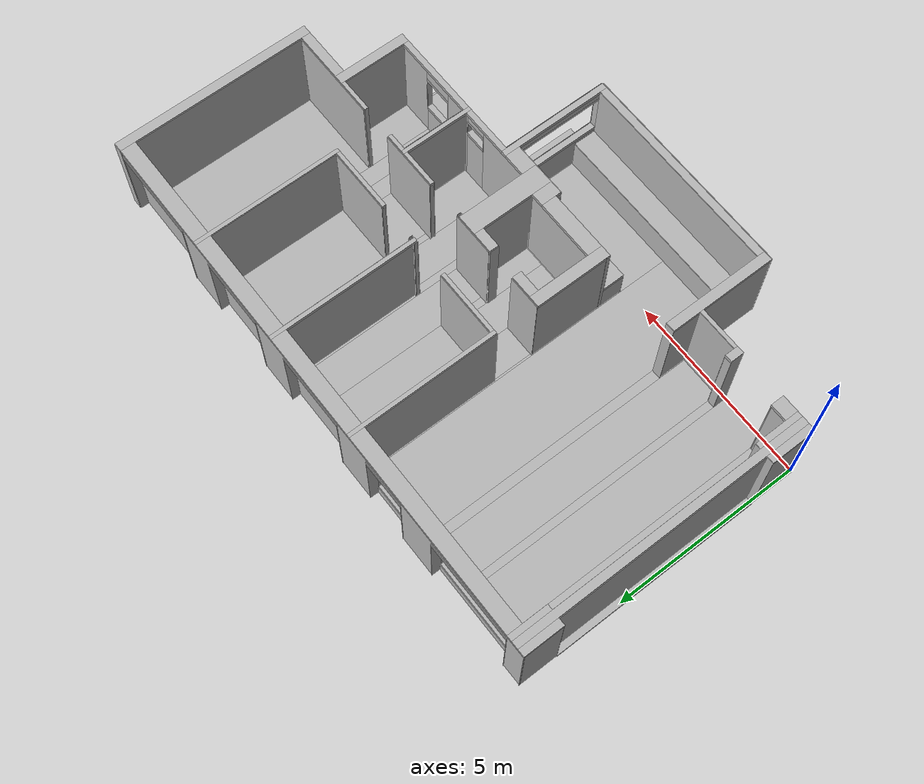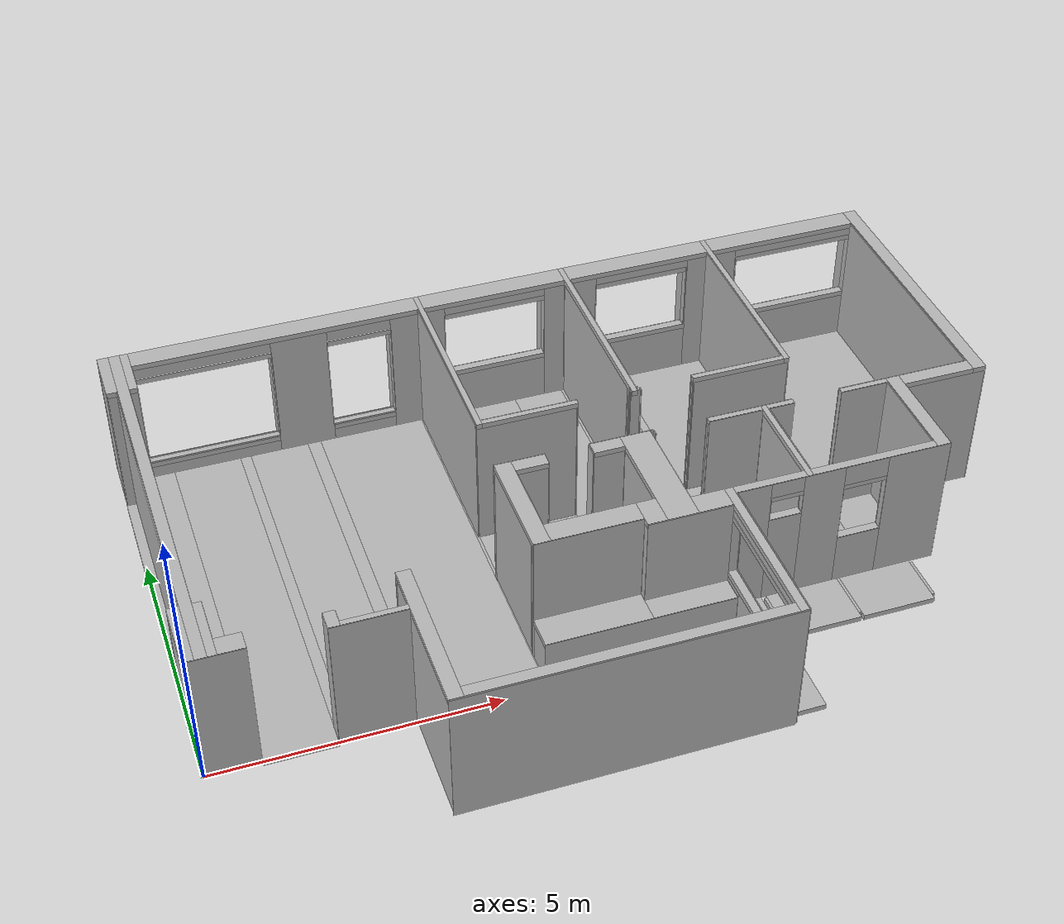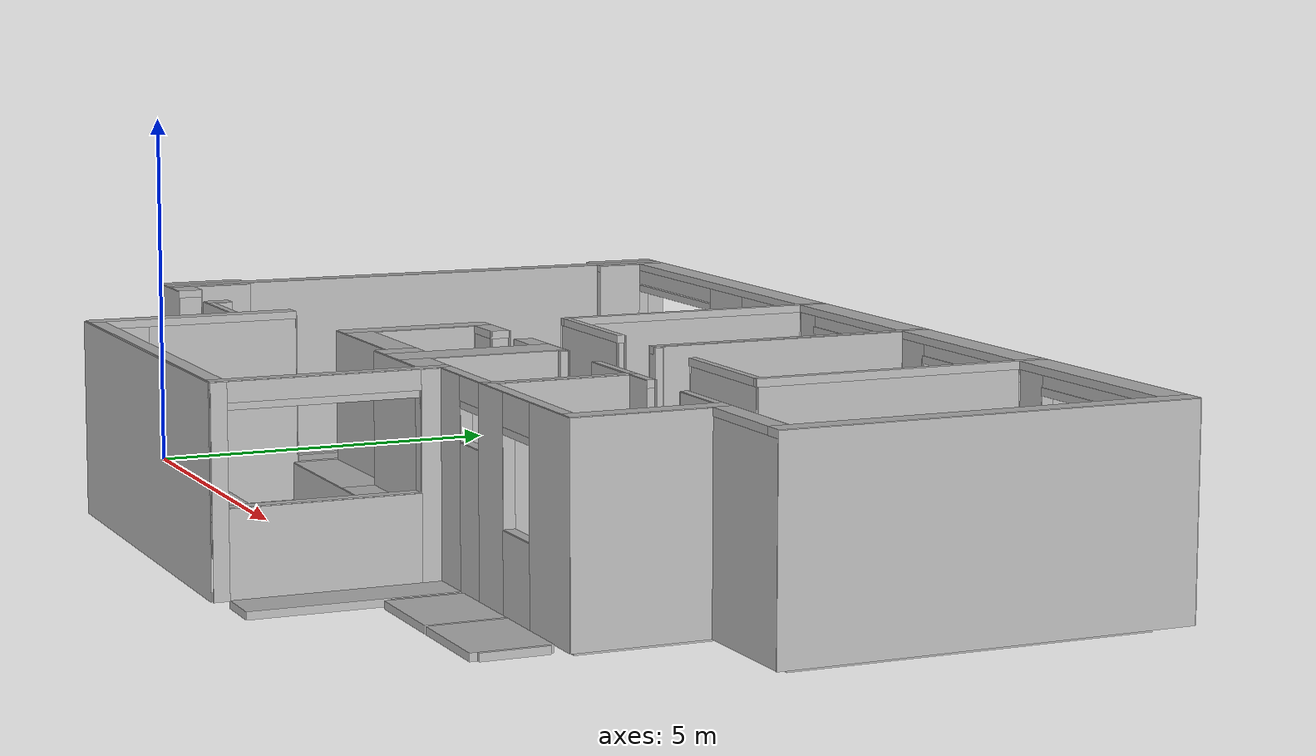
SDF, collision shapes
<?xml version='1.0' encoding='utf-8'?>
<sdf version="1.9">
  <model name="greenquartz_bto">
    <static>true</static>
    <pose>0 0 -0.01 0 0 0</pose>
    <link name="apartment">
      <visual name="fusion_visual">
        <geometry>
          <mesh>
            <uri>model://greenquartz_bto/meshes/GreenQuartz_BTO.obj</uri>
            <scale>0.01 0.01 0.01</scale>
          </mesh>
        </geometry>
      </visual>
      <collision name="planar_0000">
        <pose>-0.039840 0.600000 1.300000 0 0 0</pose>
        <geometry>
          <box>
            <size>0.010000 1.200000 2.600000</size>
          </box>
        </geometry>
      </collision>
      <collision name="planar_0001">
        <pose>-0.039840 7.325000 1.300000 0 0 0</pose>
        <geometry>
          <box>
            <size>0.010000 1.050000 2.600000</size>
          </box>
        </geometry>
      </collision>
      <collision name="planar_0002">
        <pose>0.130160 4.000000 1.300000 0 0 0</pose>
        <geometry>
          <box>
            <size>0.010000 5.600000 2.600000</size>
          </box>
        </geometry>
      </collision>
      <collision name="planar_0003">
        <pose>0.350160 4.000000 1.300000 0 0 0</pose>
        <geometry>
          <box>
            <size>0.010000 5.600000 2.600000</size>
          </box>
        </geometry>
      </collision>
      <collision name="planar_0004">
        <pose>0.500160 0.775000 1.300000 0 0 0</pose>
        <geometry>
          <box>
            <size>0.010000 0.850000 2.600000</size>
          </box>
        </geometry>
      </collision>
      <collision name="planar_0005">
        <pose>0.500160 7.125000 1.300000 0 0 0</pose>
        <geometry>
          <box>
            <size>0.010000 0.650000 2.600000</size>
          </box>
        </geometry>
      </collision>
      <collision name="planar_0006">
        <pose>0.500160 7.525000 1.325000 0 0 0</pose>
        <geometry>
          <box>
            <size>0.010000 0.150000 1.950000</size>
          </box>
        </geometry>
      </collision>
      <collision name="planar_0007">
        <pose>0.500160 7.725000 1.150000 0 0 0</pose>
        <geometry>
          <box>
            <size>0.010000 0.250000 2.300000</size>
          </box>
        </geometry>
      </collision>
      <collision name="planar_0008">
        <pose>0.925160 0.175000 1.300000 0 0 0</pose>
        <geometry>
          <box>
            <size>0.010000 0.350000 2.600000</size>
          </box>
        </geometry>
      </collision>
      <collision name="planar_0009">
        <pose>2.201910 0.175000 1.300000 0 0 0</pose>
        <geometry>
          <box>
            <size>0.010000 0.350000 2.600000</size>
          </box>
        </geometry>
      </collision>
      <collision name="planar_0010">
        <pose>2.401910 0.225000 1.300000 0 0 0</pose>
        <geometry>
          <box>
            <size>0.010000 0.250000 2.600000</size>
          </box>
        </geometry>
      </collision>
      <collision name="planar_0011">
        <pose>3.002350 7.525000 1.325000 0 0 0</pose>
        <geometry>
          <box>
            <size>0.010000 0.150000 1.950000</size>
          </box>
        </geometry>
      </collision>
      <collision name="planar_0012">
        <pose>3.002350 7.725000 1.150000 0 0 0</pose>
        <geometry>
          <box>
            <size>0.010000 0.250000 2.300000</size>
          </box>
        </geometry>
      </collision>
      <collision name="planar_0013">
        <pose>3.521910 -0.575000 1.300000 0 0 0</pose>
        <geometry>
          <box>
            <size>0.010000 2.850000 2.600000</size>
          </box>
        </geometry>
      </collision>
      <collision name="planar_0014">
        <pose>3.731910 -1.500000 1.750000 0 0 0</pose>
        <geometry>
          <box>
            <size>0.010000 0.600000 1.700000</size>
          </box>
        </geometry>
      </collision>
      <collision name="planar_0015">
        <pose>3.731910 -0.175000 1.300000 0 0 0</pose>
        <geometry>
          <box>
            <size>0.010000 2.050000 2.600000</size>
          </box>
        </geometry>
      </collision>
      <collision name="planar_0016">
        <pose>4.042350 7.525000 1.325000 0 0 0</pose>
        <geometry>
          <box>
            <size>0.010000 0.150000 1.950000</size>
          </box>
        </geometry>
      </collision>
      <collision name="planar_0017">
        <pose>4.042350 7.725000 1.150000 0 0 0</pose>
        <geometry>
          <box>
            <size>0.010000 0.250000 2.300000</size>
          </box>
        </geometry>
      </collision>
      <collision name="planar_0018">
        <pose>5.250910 7.525000 1.325000 0 0 0</pose>
        <geometry>
          <box>
            <size>0.010000 0.150000 1.950000</size>
          </box>
        </geometry>
      </collision>
      <collision name="planar_0019">
        <pose>5.250910 7.725000 1.150000 0 0 0</pose>
        <geometry>
          <box>
            <size>0.010000 0.250000 2.300000</size>
          </box>
        </geometry>
      </collision>
      <collision name="planar_0020">
        <pose>5.771910 0.450000 0.450000 0 0 0</pose>
        <geometry>
          <box>
            <size>0.010000 0.600000 0.900000</size>
          </box>
        </geometry>
      </collision>
      <collision name="planar_0021">
        <pose>5.771910 1.775000 1.300000 0 0 0</pose>
        <geometry>
          <box>
            <size>0.010000 2.050000 2.600000</size>
          </box>
        </geometry>
      </collision>
      <collision name="planar_0022">
        <pose>5.780000 5.675000 1.300000 0 0 0</pose>
        <geometry>
          <box>
            <size>0.010000 3.550000 2.600000</size>
          </box>
        </geometry>
      </collision>
      <collision name="planar_0023">
        <pose>5.880000 5.725000 1.300000 0 0 0</pose>
        <geometry>
          <box>
            <size>0.010000 3.450000 2.600000</size>
          </box>
        </geometry>
      </collision>
      <collision name="planar_0024">
        <pose>6.056910 1.850000 1.300000 0 0 0</pose>
        <geometry>
          <box>
            <size>0.010000 1.400000 2.600000</size>
          </box>
        </geometry>
      </collision>
      <collision name="planar_0025">
        <pose>6.290910 7.525000 1.675000 0 0 0</pose>
        <geometry>
          <box>
            <size>0.010000 0.150000 1.350000</size>
          </box>
        </geometry>
      </collision>
      <collision name="planar_0026">
        <pose>6.290910 7.725000 1.175000 0 0 0</pose>
        <geometry>
          <box>
            <size>0.010000 0.250000 2.350000</size>
          </box>
        </geometry>
      </collision>
      <collision name="planar_0027">
        <pose>6.636910 2.675000 1.300000 0 0 0</pose>
        <geometry>
          <box>
            <size>0.010000 0.250000 2.600000</size>
          </box>
        </geometry>
      </collision>
      <collision name="planar_0028">
        <pose>7.431340 2.675000 1.300000 0 0 0</pose>
        <geometry>
          <box>
            <size>0.010000 0.250000 2.600000</size>
          </box>
        </geometry>
      </collision>
      <collision name="planar_0029">
        <pose>7.630000 3.950000 1.300000 0 0 0</pose>
        <geometry>
          <box>
            <size>0.010000 0.100000 2.600000</size>
          </box>
        </geometry>
      </collision>
      <collision name="planar_0030">
        <pose>7.661910 0.675000 1.750000 0 0 0</pose>
        <geometry>
          <box>
            <size>0.010000 0.150000 1.700000</size>
          </box>
        </geometry>
      </collision>
      <collision name="planar_0031">
        <pose>8.008580 1.850000 1.300000 0 0 0</pose>
        <geometry>
          <box>
            <size>0.010000 1.400000 2.600000</size>
          </box>
        </geometry>
      </collision>
      <collision name="planar_0032">
        <pose>8.246850 7.525000 1.675000 0 0 0</pose>
        <geometry>
          <box>
            <size>0.010000 0.150000 1.350000</size>
          </box>
        </geometry>
      </collision>
      <collision name="planar_0033">
        <pose>8.246850 7.725000 1.175000 0 0 0</pose>
        <geometry>
          <box>
            <size>0.010000 0.250000 2.350000</size>
          </box>
        </geometry>
      </collision>
      <collision name="planar_0034">
        <pose>8.548580 1.825000 1.300000 0 0 0</pose>
        <geometry>
          <box>
            <size>0.010000 1.950000 2.600000</size>
          </box>
        </geometry>
      </collision>
      <collision name="planar_0035">
        <pose>8.620000 3.950000 1.300000 0 0 0</pose>
        <geometry>
          <box>
            <size>0.010000 0.100000 2.600000</size>
          </box>
        </geometry>
      </collision>
      <collision name="planar_0036">
        <pose>8.621900 2.750000 1.300000 0 0 0</pose>
        <geometry>
          <box>
            <size>0.010000 0.100000 2.600000</size>
          </box>
        </geometry>
      </collision>
      <collision name="planar_0037">
        <pose>8.660000 5.725000 1.300000 0 0 0</pose>
        <geometry>
          <box>
            <size>0.010000 3.450000 2.600000</size>
          </box>
        </geometry>
      </collision>
      <collision name="planar_0038">
        <pose>8.760000 5.725000 1.300000 0 0 0</pose>
        <geometry>
          <box>
            <size>0.010000 3.450000 2.600000</size>
          </box>
        </geometry>
      </collision>
      <collision name="planar_0039">
        <pose>8.820000 3.950000 1.300000 0 0 0</pose>
        <geometry>
          <box>
            <size>0.010000 0.100000 2.600000</size>
          </box>
        </geometry>
      </collision>
      <collision name="planar_0040">
        <pose>9.163560 -1.500000 1.000000 0 0 0</pose>
        <geometry>
          <box>
            <size>0.010000 0.600000 0.200000</size>
          </box>
        </geometry>
      </collision>
      <collision name="planar_0041">
        <pose>9.163560 -0.525000 0.550000 0 0 0</pose>
        <geometry>
          <box>
            <size>0.010000 1.350000 1.100000</size>
          </box>
        </geometry>
      </collision>
      <collision name="planar_0042">
        <pose>9.163560 -0.600000 2.475000 0 0 0</pose>
        <geometry>
          <box>
            <size>0.010000 2.400000 0.250000</size>
          </box>
        </geometry>
      </collision>
      <collision name="planar_0043">
        <pose>9.163560 0.375000 1.000000 0 0 0</pose>
        <geometry>
          <box>
            <size>0.010000 0.450000 0.200000</size>
          </box>
        </geometry>
      </collision>
      <collision name="planar_0044">
        <pose>9.286850 7.525000 1.675000 0 0 0</pose>
        <geometry>
          <box>
            <size>0.010000 0.150000 1.350000</size>
          </box>
        </geometry>
      </collision>
      <collision name="planar_0045">
        <pose>9.286850 7.725000 1.175000 0 0 0</pose>
        <geometry>
          <box>
            <size>0.010000 0.250000 2.350000</size>
          </box>
        </geometry>
      </collision>
      <collision name="planar_0046">
        <pose>9.321910 -1.900000 1.300000 0 0 0</pose>
        <geometry>
          <box>
            <size>0.010000 0.200000 2.600000</size>
          </box>
        </geometry>
      </collision>
      <collision name="planar_0047">
        <pose>9.321910 -0.600000 2.475000 0 0 0</pose>
        <geometry>
          <box>
            <size>0.010000 2.400000 0.250000</size>
          </box>
        </geometry>
      </collision>
      <collision name="planar_0048">
        <pose>9.321910 -0.600000 0.550000 0 0 0</pose>
        <geometry>
          <box>
            <size>0.010000 2.400000 1.100000</size>
          </box>
        </geometry>
      </collision>
      <collision name="planar_0049">
        <pose>9.321910 0.725000 1.300000 0 0 0</pose>
        <geometry>
          <box>
            <size>0.010000 0.250000 2.600000</size>
          </box>
        </geometry>
      </collision>
      <collision name="planar_0050">
        <pose>9.625000 2.750000 1.300000 0 0 0</pose>
        <geometry>
          <box>
            <size>0.010000 0.100000 2.600000</size>
          </box>
        </geometry>
      </collision>
      <collision name="planar_0051">
        <pose>9.815720 3.950000 1.300000 0 0 0</pose>
        <geometry>
          <box>
            <size>0.010000 0.100000 2.600000</size>
          </box>
        </geometry>
      </collision>
      <collision name="planar_0052">
        <pose>9.962660 0.925000 2.050000 0 0 0</pose>
        <geometry>
          <box>
            <size>0.010000 0.150000 0.500000</size>
          </box>
        </geometry>
      </collision>
      <collision name="planar_0053">
        <pose>10.567450 0.925000 2.050000 0 0 0</pose>
        <geometry>
          <box>
            <size>0.010000 0.150000 0.500000</size>
          </box>
        </geometry>
      </collision>
      <collision name="planar_0054">
        <pose>10.615310 1.850000 1.300000 0 0 0</pose>
        <geometry>
          <box>
            <size>0.010000 1.700000 2.600000</size>
          </box>
        </geometry>
      </collision>
      <collision name="planar_0055">
        <pose>10.720310 1.850000 1.300000 0 0 0</pose>
        <geometry>
          <box>
            <size>0.010000 1.700000 2.600000</size>
          </box>
        </geometry>
      </collision>
      <collision name="planar_0056">
        <pose>11.127630 7.525000 1.675000 0 0 0</pose>
        <geometry>
          <box>
            <size>0.010000 0.150000 1.350000</size>
          </box>
        </geometry>
      </collision>
      <collision name="planar_0057">
        <pose>11.127630 7.725000 1.175000 0 0 0</pose>
        <geometry>
          <box>
            <size>0.010000 0.250000 2.350000</size>
          </box>
        </geometry>
      </collision>
      <collision name="planar_0058">
        <pose>11.189250 2.750000 1.300000 0 0 0</pose>
        <geometry>
          <box>
            <size>0.010000 0.100000 2.600000</size>
          </box>
        </geometry>
      </collision>
      <collision name="planar_0059">
        <pose>11.301610 0.925000 1.600000 0 0 0</pose>
        <geometry>
          <box>
            <size>0.010000 0.150000 1.200000</size>
          </box>
        </geometry>
      </collision>
      <collision name="planar_0060">
        <pose>11.535720 5.725000 1.300000 0 0 0</pose>
        <geometry>
          <box>
            <size>0.010000 3.450000 2.600000</size>
          </box>
        </geometry>
      </collision>
      <collision name="planar_0061">
        <pose>11.635720 5.675000 1.300000 0 0 0</pose>
        <geometry>
          <box>
            <size>0.010000 3.550000 2.600000</size>
          </box>
        </geometry>
      </collision>
      <collision name="planar_0062">
        <pose>12.100000 2.750000 1.300000 0 0 0</pose>
        <geometry>
          <box>
            <size>0.010000 0.100000 2.600000</size>
          </box>
        </geometry>
      </collision>
      <collision name="planar_0063">
        <pose>12.111070 0.925000 1.600000 0 0 0</pose>
        <geometry>
          <box>
            <size>0.010000 0.150000 1.200000</size>
          </box>
        </geometry>
      </collision>
      <collision name="planar_0064">
        <pose>12.167630 7.525000 1.675000 0 0 0</pose>
        <geometry>
          <box>
            <size>0.010000 0.150000 1.350000</size>
          </box>
        </geometry>
      </collision>
      <collision name="planar_0065">
        <pose>12.167630 7.725000 1.175000 0 0 0</pose>
        <geometry>
          <box>
            <size>0.010000 0.250000 2.350000</size>
          </box>
        </geometry>
      </collision>
      <collision name="planar_0066">
        <pose>12.980890 1.850000 1.300000 0 0 0</pose>
        <geometry>
          <box>
            <size>0.010000 1.700000 2.600000</size>
          </box>
        </geometry>
      </collision>
      <collision name="planar_0067">
        <pose>13.250890 1.825000 1.300000 0 0 0</pose>
        <geometry>
          <box>
            <size>0.010000 1.950000 2.600000</size>
          </box>
        </geometry>
      </collision>
      <collision name="planar_0068">
        <pose>14.575750 5.125000 1.300000 0 0 0</pose>
        <geometry>
          <box>
            <size>0.010000 4.650000 2.600000</size>
          </box>
        </geometry>
      </collision>
      <collision name="planar_0069">
        <pose>14.575750 7.525000 1.675000 0 0 0</pose>
        <geometry>
          <box>
            <size>0.010000 0.150000 1.350000</size>
          </box>
        </geometry>
      </collision>
      <collision name="planar_0070">
        <pose>14.575750 7.725000 1.175000 0 0 0</pose>
        <geometry>
          <box>
            <size>0.010000 0.250000 2.350000</size>
          </box>
        </geometry>
      </collision>
      <collision name="planar_0071">
        <pose>14.845750 5.200000 1.300000 0 0 0</pose>
        <geometry>
          <box>
            <size>0.010000 5.300000 2.600000</size>
          </box>
        </geometry>
      </collision>
      <collision name="planar_0072">
        <pose>6.400000 -2.018000 1.300000 0 0 0</pose>
        <geometry>
          <box>
            <size>5.800000 0.010000 2.600000</size>
          </box>
        </geometry>
      </collision>
      <collision name="planar_0073">
        <pose>6.450000 -1.798000 1.750000 0 0 0</pose>
        <geometry>
          <box>
            <size>5.400000 0.010000 1.700000</size>
          </box>
        </geometry>
      </collision>
      <collision name="planar_0074">
        <pose>9.225000 -1.798000 1.725000 0 0 0</pose>
        <geometry>
          <box>
            <size>0.150000 0.010000 1.250000</size>
          </box>
        </geometry>
      </collision>
      <collision name="planar_0075">
        <pose>6.450000 -1.198000 0.450000 0 0 0</pose>
        <geometry>
          <box>
            <size>5.400000 0.010000 0.900000</size>
          </box>
        </geometry>
      </collision>
      <collision name="planar_0076">
        <pose>0.450000 0.000000 1.300000 0 0 0</pose>
        <geometry>
          <box>
            <size>1.000000 0.010000 2.600000</size>
          </box>
        </geometry>
      </collision>
      <collision name="planar_0077">
        <pose>2.850000 0.000000 1.300000 0 0 0</pose>
        <geometry>
          <box>
            <size>1.300000 0.010000 2.600000</size>
          </box>
        </geometry>
      </collision>
      <collision name="planar_0078">
        <pose>2.950000 0.100000 1.300000 0 0 0</pose>
        <geometry>
          <box>
            <size>1.100000 0.010000 2.600000</size>
          </box>
        </geometry>
      </collision>
      <collision name="planar_0079">
        <pose>7.450000 0.150000 0.450000 0 0 0</pose>
        <geometry>
          <box>
            <size>3.400000 0.010000 0.900000</size>
          </box>
        </geometry>
      </collision>
      <collision name="planar_0080">
        <pose>0.725000 0.340000 1.300000 0 0 0</pose>
        <geometry>
          <box>
            <size>0.450000 0.010000 2.600000</size>
          </box>
        </geometry>
      </collision>
      <collision name="planar_0081">
        <pose>2.300000 0.340000 1.300000 0 0 0</pose>
        <geometry>
          <box>
            <size>0.200000 0.010000 2.600000</size>
          </box>
        </geometry>
      </collision>
      <collision name="planar_0082">
        <pose>8.400000 0.592000 1.750000 0 0 0</pose>
        <geometry>
          <box>
            <size>1.500000 0.010000 1.700000</size>
          </box>
        </geometry>
      </collision>
      <collision name="planar_0083">
        <pose>9.225000 0.592000 1.725000 0 0 0</pose>
        <geometry>
          <box>
            <size>0.150000 0.010000 1.250000</size>
          </box>
        </geometry>
      </collision>
      <collision name="planar_0084">
        <pose>6.700000 0.750000 1.750000 0 0 0</pose>
        <geometry>
          <box>
            <size>1.900000 0.010000 1.700000</size>
          </box>
        </geometry>
      </collision>
      <collision name="planar_0085">
        <pose>3.625000 0.852000 1.300000 0 0 0</pose>
        <geometry>
          <box>
            <size>0.250000 0.010000 2.600000</size>
          </box>
        </geometry>
      </collision>
      <collision name="planar_0086">
        <pose>7.850000 0.852000 1.300000 0 0 0</pose>
        <geometry>
          <box>
            <size>4.200000 0.010000 2.600000</size>
          </box>
        </geometry>
      </collision>
      <collision name="planar_0087">
        <pose>10.250000 0.852000 2.450000 0 0 0</pose>
        <geometry>
          <box>
            <size>0.600000 0.010000 0.300000</size>
          </box>
        </geometry>
      </collision>
      <collision name="planar_0088">
        <pose>10.250000 0.852000 0.900000 0 0 0</pose>
        <geometry>
          <box>
            <size>0.600000 0.010000 1.800000</size>
          </box>
        </geometry>
      </collision>
      <collision name="planar_0089">
        <pose>10.925000 0.852000 1.300000 0 0 0</pose>
        <geometry>
          <box>
            <size>0.750000 0.010000 2.600000</size>
          </box>
        </geometry>
      </collision>
      <collision name="planar_0090">
        <pose>11.700000 0.852000 2.400000 0 0 0</pose>
        <geometry>
          <box>
            <size>0.800000 0.010000 0.400000</size>
          </box>
        </geometry>
      </collision>
      <collision name="planar_0091">
        <pose>11.700000 0.852000 0.500000 0 0 0</pose>
        <geometry>
          <box>
            <size>0.800000 0.010000 1.000000</size>
          </box>
        </geometry>
      </collision>
      <collision name="planar_0092">
        <pose>12.675000 0.852000 1.300000 0 0 0</pose>
        <geometry>
          <box>
            <size>1.150000 0.010000 2.600000</size>
          </box>
        </geometry>
      </collision>
      <collision name="planar_0093">
        <pose>9.250000 0.992000 1.300000 0 0 0</pose>
        <geometry>
          <box>
            <size>1.400000 0.010000 2.600000</size>
          </box>
        </geometry>
      </collision>
      <collision name="planar_0094">
        <pose>10.250000 0.992000 2.450000 0 0 0</pose>
        <geometry>
          <box>
            <size>0.600000 0.010000 0.300000</size>
          </box>
        </geometry>
      </collision>
      <collision name="planar_0095">
        <pose>10.250000 0.992000 0.900000 0 0 0</pose>
        <geometry>
          <box>
            <size>0.600000 0.010000 1.800000</size>
          </box>
        </geometry>
      </collision>
      <collision name="planar_0096">
        <pose>10.575000 0.992000 1.300000 0 0 0</pose>
        <geometry>
          <box>
            <size>0.050000 0.010000 2.600000</size>
          </box>
        </geometry>
      </collision>
      <collision name="planar_0097">
        <pose>11.000000 0.992000 1.300000 0 0 0</pose>
        <geometry>
          <box>
            <size>0.600000 0.010000 2.600000</size>
          </box>
        </geometry>
      </collision>
      <collision name="planar_0098">
        <pose>11.700000 0.992000 2.400000 0 0 0</pose>
        <geometry>
          <box>
            <size>0.800000 0.010000 0.400000</size>
          </box>
        </geometry>
      </collision>
      <collision name="planar_0099">
        <pose>11.700000 0.992000 0.500000 0 0 0</pose>
        <geometry>
          <box>
            <size>0.800000 0.010000 1.000000</size>
          </box>
        </geometry>
      </collision>
      <collision name="planar_0100">
        <pose>12.550000 0.992000 1.300000 0 0 0</pose>
        <geometry>
          <box>
            <size>0.900000 0.010000 2.600000</size>
          </box>
        </geometry>
      </collision>
      <collision name="planar_0101">
        <pose>7.025000 1.127000 1.300000 0 0 0</pose>
        <geometry>
          <box>
            <size>1.950000 0.010000 2.600000</size>
          </box>
        </geometry>
      </collision>
      <collision name="planar_0102">
        <pose>0.050000 1.200000 1.300000 0 0 0</pose>
        <geometry>
          <box>
            <size>0.200000 0.010000 2.600000</size>
          </box>
        </geometry>
      </collision>
      <collision name="planar_0103">
        <pose>0.425000 1.200000 1.300000 0 0 0</pose>
        <geometry>
          <box>
            <size>0.150000 0.010000 2.600000</size>
          </box>
        </geometry>
      </collision>
      <collision name="planar_0104">
        <pose>14.050000 2.565000 1.300000 0 0 0</pose>
        <geometry>
          <box>
            <size>1.600000 0.010000 2.600000</size>
          </box>
        </geometry>
      </collision>
      <collision name="planar_0105">
        <pose>6.350000 2.568430 1.300000 0 0 0</pose>
        <geometry>
          <box>
            <size>0.600000 0.010000 2.600000</size>
          </box>
        </geometry>
      </collision>
      <collision name="planar_0106">
        <pose>7.725000 2.568430 1.300000 0 0 0</pose>
        <geometry>
          <box>
            <size>0.550000 0.010000 2.600000</size>
          </box>
        </geometry>
      </collision>
      <collision name="planar_0107">
        <pose>8.575000 2.699430 1.300000 0 0 0</pose>
        <geometry>
          <box>
            <size>0.050000 0.010000 2.600000</size>
          </box>
        </geometry>
      </collision>
      <collision name="planar_0108">
        <pose>10.100000 2.699430 1.300000 0 0 0</pose>
        <geometry>
          <box>
            <size>1.000000 0.010000 2.600000</size>
          </box>
        </geometry>
      </collision>
      <collision name="planar_0109">
        <pose>10.950000 2.699430 1.300000 0 0 0</pose>
        <geometry>
          <box>
            <size>0.500000 0.010000 2.600000</size>
          </box>
        </geometry>
      </collision>
      <collision name="planar_0110">
        <pose>12.550000 2.704430 1.300000 0 0 0</pose>
        <geometry>
          <box>
            <size>0.900000 0.010000 2.600000</size>
          </box>
        </geometry>
      </collision>
      <collision name="planar_0111">
        <pose>6.200000 2.824430 1.300000 0 0 0</pose>
        <geometry>
          <box>
            <size>0.900000 0.010000 2.600000</size>
          </box>
        </geometry>
      </collision>
      <collision name="planar_0112">
        <pose>8.025000 2.824430 1.300000 0 0 0</pose>
        <geometry>
          <box>
            <size>1.150000 0.010000 2.600000</size>
          </box>
        </geometry>
      </collision>
      <collision name="planar_0113">
        <pose>10.400000 2.824430 1.300000 0 0 0</pose>
        <geometry>
          <box>
            <size>1.600000 0.010000 2.600000</size>
          </box>
        </geometry>
      </collision>
      <collision name="planar_0114">
        <pose>13.400000 2.824430 1.300000 0 0 0</pose>
        <geometry>
          <box>
            <size>2.600000 0.010000 2.600000</size>
          </box>
        </geometry>
      </collision>
      <collision name="planar_0115">
        <pose>6.725000 3.920000 1.300000 0 0 0</pose>
        <geometry>
          <box>
            <size>1.850000 0.010000 2.600000</size>
          </box>
        </geometry>
      </collision>
      <collision name="planar_0116">
        <pose>8.700000 3.920000 1.300000 0 0 0</pose>
        <geometry>
          <box>
            <size>0.200000 0.010000 2.600000</size>
          </box>
        </geometry>
      </collision>
      <collision name="planar_0117">
        <pose>10.725000 3.920000 1.300000 0 0 0</pose>
        <geometry>
          <box>
            <size>1.850000 0.010000 2.600000</size>
          </box>
        </geometry>
      </collision>
      <collision name="planar_0118">
        <pose>6.775000 4.020000 1.300000 0 0 0</pose>
        <geometry>
          <box>
            <size>1.750000 0.010000 2.600000</size>
          </box>
        </geometry>
      </collision>
      <collision name="planar_0119">
        <pose>8.625000 4.020000 1.300000 0 0 0</pose>
        <geometry>
          <box>
            <size>0.050000 0.010000 2.600000</size>
          </box>
        </geometry>
      </collision>
      <collision name="planar_0120">
        <pose>8.775000 4.020000 1.300000 0 0 0</pose>
        <geometry>
          <box>
            <size>0.050000 0.010000 2.600000</size>
          </box>
        </geometry>
      </collision>
      <collision name="planar_0121">
        <pose>10.675000 4.020000 1.300000 0 0 0</pose>
        <geometry>
          <box>
            <size>1.750000 0.010000 2.600000</size>
          </box>
        </geometry>
      </collision>
      <collision name="planar_0122">
        <pose>0.050000 6.815000 1.300000 0 0 0</pose>
        <geometry>
          <box>
            <size>0.200000 0.010000 2.600000</size>
          </box>
        </geometry>
      </collision>
      <collision name="planar_0123">
        <pose>0.425000 6.815000 1.300000 0 0 0</pose>
        <geometry>
          <box>
            <size>0.150000 0.010000 2.600000</size>
          </box>
        </geometry>
      </collision>
      <collision name="planar_0124">
        <pose>1.750000 7.470000 2.450000 0 0 0</pose>
        <geometry>
          <box>
            <size>2.500000 0.010000 0.300000</size>
          </box>
        </geometry>
      </collision>
      <collision name="planar_0125">
        <pose>1.750000 7.470000 0.175000 0 0 0</pose>
        <geometry>
          <box>
            <size>2.500000 0.010000 0.350000</size>
          </box>
        </geometry>
      </collision>
      <collision name="planar_0126">
        <pose>3.525000 7.470000 1.300000 0 0 0</pose>
        <geometry>
          <box>
            <size>1.050000 0.010000 2.600000</size>
          </box>
        </geometry>
      </collision>
      <collision name="planar_0127">
        <pose>4.650000 7.470000 2.450000 0 0 0</pose>
        <geometry>
          <box>
            <size>1.200000 0.010000 0.300000</size>
          </box>
        </geometry>
      </collision>
      <collision name="planar_0128">
        <pose>4.650000 7.470000 0.175000 0 0 0</pose>
        <geometry>
          <box>
            <size>1.200000 0.010000 0.350000</size>
          </box>
        </geometry>
      </collision>
      <collision name="planar_0129">
        <pose>5.525000 7.470000 1.300000 0 0 0</pose>
        <geometry>
          <box>
            <size>0.550000 0.010000 2.600000</size>
          </box>
        </geometry>
      </collision>
      <collision name="planar_0130">
        <pose>6.100000 7.470000 1.300000 0 0 0</pose>
        <geometry>
          <box>
            <size>0.400000 0.010000 2.600000</size>
          </box>
        </geometry>
      </collision>
      <collision name="planar_0131">
        <pose>7.275000 7.470000 2.475000 0 0 0</pose>
        <geometry>
          <box>
            <size>1.950000 0.010000 0.250000</size>
          </box>
        </geometry>
      </collision>
      <collision name="planar_0132">
        <pose>7.275000 7.470000 0.500000 0 0 0</pose>
        <geometry>
          <box>
            <size>1.950000 0.010000 1.000000</size>
          </box>
        </geometry>
      </collision>
      <collision name="planar_0133">
        <pose>8.450000 7.470000 1.300000 0 0 0</pose>
        <geometry>
          <box>
            <size>0.400000 0.010000 2.600000</size>
          </box>
        </geometry>
      </collision>
      <collision name="planar_0134">
        <pose>9.025000 7.470000 1.300000 0 0 0</pose>
        <geometry>
          <box>
            <size>0.550000 0.010000 2.600000</size>
          </box>
        </geometry>
      </collision>
      <collision name="planar_0135">
        <pose>10.225000 7.470000 2.475000 0 0 0</pose>
        <geometry>
          <box>
            <size>1.850000 0.010000 0.250000</size>
          </box>
        </geometry>
      </collision>
      <collision name="planar_0136">
        <pose>10.225000 7.470000 0.500000 0 0 0</pose>
        <geometry>
          <box>
            <size>1.850000 0.010000 1.000000</size>
          </box>
        </geometry>
      </collision>
      <collision name="planar_0137">
        <pose>11.350000 7.470000 1.300000 0 0 0</pose>
        <geometry>
          <box>
            <size>0.400000 0.010000 2.600000</size>
          </box>
        </geometry>
      </collision>
      <collision name="planar_0138">
        <pose>11.900000 7.470000 1.300000 0 0 0</pose>
        <geometry>
          <box>
            <size>0.500000 0.010000 2.600000</size>
          </box>
        </geometry>
      </collision>
      <collision name="planar_0139">
        <pose>13.375000 7.470000 2.475000 0 0 0</pose>
        <geometry>
          <box>
            <size>2.450000 0.010000 0.250000</size>
          </box>
        </geometry>
      </collision>
      <collision name="planar_0140">
        <pose>13.375000 7.470000 0.500000 0 0 0</pose>
        <geometry>
          <box>
            <size>2.450000 0.010000 1.000000</size>
          </box>
        </geometry>
      </collision>
      <collision name="planar_0141">
        <pose>1.750000 7.620000 0.175000 0 0 0</pose>
        <geometry>
          <box>
            <size>2.500000 0.010000 0.350000</size>
          </box>
        </geometry>
      </collision>
      <collision name="planar_0142">
        <pose>4.650000 7.620000 0.175000 0 0 0</pose>
        <geometry>
          <box>
            <size>1.200000 0.010000 0.350000</size>
          </box>
        </geometry>
      </collision>
      <collision name="planar_0143">
        <pose>7.275000 7.620000 0.500000 0 0 0</pose>
        <geometry>
          <box>
            <size>1.950000 0.010000 1.000000</size>
          </box>
        </geometry>
      </collision>
      <collision name="planar_0144">
        <pose>10.225000 7.620000 0.500000 0 0 0</pose>
        <geometry>
          <box>
            <size>1.850000 0.010000 1.000000</size>
          </box>
        </geometry>
      </collision>
      <collision name="planar_0145">
        <pose>13.375000 7.620000 0.500000 0 0 0</pose>
        <geometry>
          <box>
            <size>2.450000 0.010000 1.000000</size>
          </box>
        </geometry>
      </collision>
      <collision name="planar_0146">
        <pose>0.225000 7.830000 1.300000 0 0 0</pose>
        <geometry>
          <box>
            <size>0.550000 0.010000 2.600000</size>
          </box>
        </geometry>
      </collision>
      <collision name="planar_0147">
        <pose>1.750000 7.830000 2.450000 0 0 0</pose>
        <geometry>
          <box>
            <size>2.500000 0.010000 0.300000</size>
          </box>
        </geometry>
      </collision>
      <collision name="planar_0148">
        <pose>3.525000 7.830000 1.300000 0 0 0</pose>
        <geometry>
          <box>
            <size>1.050000 0.010000 2.600000</size>
          </box>
        </geometry>
      </collision>
      <collision name="planar_0149">
        <pose>4.650000 7.830000 2.450000 0 0 0</pose>
        <geometry>
          <box>
            <size>1.200000 0.010000 0.300000</size>
          </box>
        </geometry>
      </collision>
      <collision name="planar_0150">
        <pose>5.775000 7.830000 1.300000 0 0 0</pose>
        <geometry>
          <box>
            <size>1.050000 0.010000 2.600000</size>
          </box>
        </geometry>
      </collision>
      <collision name="planar_0151">
        <pose>7.275000 7.830000 2.475000 0 0 0</pose>
        <geometry>
          <box>
            <size>1.950000 0.010000 0.250000</size>
          </box>
        </geometry>
      </collision>
      <collision name="planar_0152">
        <pose>8.775000 7.830000 1.300000 0 0 0</pose>
        <geometry>
          <box>
            <size>1.050000 0.010000 2.600000</size>
          </box>
        </geometry>
      </collision>
      <collision name="planar_0153">
        <pose>10.225000 7.830000 2.475000 0 0 0</pose>
        <geometry>
          <box>
            <size>1.850000 0.010000 0.250000</size>
          </box>
        </geometry>
      </collision>
      <collision name="planar_0154">
        <pose>11.650000 7.830000 1.300000 0 0 0</pose>
        <geometry>
          <box>
            <size>1.000000 0.010000 2.600000</size>
          </box>
        </geometry>
      </collision>
      <collision name="planar_0155">
        <pose>13.375000 7.830000 2.475000 0 0 0</pose>
        <geometry>
          <box>
            <size>2.450000 0.010000 0.250000</size>
          </box>
        </geometry>
      </collision>
      <collision name="planar_0156">
        <pose>14.725000 7.855000 1.300000 0 0 0</pose>
        <geometry>
          <box>
            <size>0.250000 0.010000 2.600000</size>
          </box>
        </geometry>
      </collision>
      <collision name="planar_0157">
        <pose>0.050000 4.000000 -0.040000 0 0 0</pose>
        <geometry>
          <box>
            <size>0.200000 5.600000 0.100000</size>
          </box>
        </geometry>
      </collision>
      <collision name="planar_0158">
        <pose>0.425000 4.000000 -0.040000 0 0 0</pose>
        <geometry>
          <box>
            <size>0.150000 5.600000 0.100000</size>
          </box>
        </geometry>
      </collision>
      <collision name="planar_0159">
        <pose>0.725000 3.900000 -0.040000 0 0 0</pose>
        <geometry>
          <box>
            <size>0.450000 7.100000 0.100000</size>
          </box>
        </geometry>
      </collision>
      <collision name="planar_0160">
        <pose>1.575000 3.725000 -0.040000 0 0 0</pose>
        <geometry>
          <box>
            <size>1.250000 7.450000 0.100000</size>
          </box>
        </geometry>
      </collision>
      <collision name="planar_0161">
        <pose>2.300000 3.900000 -0.040000 0 0 0</pose>
        <geometry>
          <box>
            <size>0.200000 7.100000 0.100000</size>
          </box>
        </geometry>
      </collision>
      <collision name="planar_0162">
        <pose>2.950000 3.775000 -0.040000 0 0 0</pose>
        <geometry>
          <box>
            <size>1.100000 7.350000 0.100000</size>
          </box>
        </geometry>
      </collision>
      <collision name="planar_0163">
        <pose>3.625000 4.150000 -0.040000 0 0 0</pose>
        <geometry>
          <box>
            <size>0.250000 6.600000 0.100000</size>
          </box>
        </geometry>
      </collision>
      <collision name="planar_0164">
        <pose>4.750000 3.125000 -0.040000 0 0 0</pose>
        <geometry>
          <box>
            <size>2.000000 8.650000 0.100000</size>
          </box>
        </geometry>
      </collision>
      <collision name="planar_0165">
        <pose>5.775000 5.125000 -0.040000 0 0 0</pose>
        <geometry>
          <box>
            <size>0.050000 4.650000 0.100000</size>
          </box>
        </geometry>
      </collision>
      <collision name="planar_0166">
        <pose>6.225000 3.350000 -0.040000 0 0 0</pose>
        <geometry>
          <box>
            <size>0.850000 1.100000 0.100000</size>
          </box>
        </geometry>
      </collision>
      <collision name="planar_0167">
        <pose>6.350000 1.850000 -0.040000 0 0 0</pose>
        <geometry>
          <box>
            <size>0.600000 1.400000 0.100000</size>
          </box>
        </geometry>
      </collision>
      <collision name="planar_0168">
        <pose>7.050000 2.525000 -0.040000 0 0 0</pose>
        <geometry>
          <box>
            <size>0.800000 2.750000 0.100000</size>
          </box>
        </geometry>
      </collision>
      <collision name="planar_0169">
        <pose>6.775000 5.725000 -0.040000 0 0 0</pose>
        <geometry>
          <box>
            <size>1.750000 3.450000 0.100000</size>
          </box>
        </geometry>
      </collision>
      <collision name="planar_0170">
        <pose>7.550000 3.350000 -0.040000 0 0 0</pose>
        <geometry>
          <box>
            <size>0.200000 1.100000 0.100000</size>
          </box>
        </geometry>
      </collision>
      <collision name="planar_0171">
        <pose>7.725000 1.850000 -0.040000 0 0 0</pose>
        <geometry>
          <box>
            <size>0.550000 1.400000 0.100000</size>
          </box>
        </geometry>
      </collision>
      <collision name="planar_0172">
        <pose>8.125000 5.125000 -0.040000 0 0 0</pose>
        <geometry>
          <box>
            <size>0.950000 4.650000 0.100000</size>
          </box>
        </geometry>
      </collision>
      <collision name="planar_0173">
        <pose>8.575000 1.850000 -0.040000 0 0 0</pose>
        <geometry>
          <box>
            <size>0.050000 1.700000 0.100000</size>
          </box>
        </geometry>
      </collision>
      <collision name="planar_0174">
        <pose>8.625000 5.725000 -0.040000 0 0 0</pose>
        <geometry>
          <box>
            <size>0.050000 3.450000 0.100000</size>
          </box>
        </geometry>
      </collision>
      <collision name="planar_0175">
        <pose>8.700000 2.450000 -0.040000 0 0 0</pose>
        <geometry>
          <box>
            <size>0.200000 2.900000 0.100000</size>
          </box>
        </geometry>
      </collision>
      <collision name="planar_0176">
        <pose>8.775000 5.725000 -0.040000 0 0 0</pose>
        <geometry>
          <box>
            <size>0.050000 3.450000 0.100000</size>
          </box>
        </geometry>
      </collision>
      <collision name="planar_0177">
        <pose>7.450000 -0.525000 -0.040000 0 0 0</pose>
        <geometry>
          <box>
            <size>3.400000 1.350000 0.100000</size>
          </box>
        </geometry>
      </collision>
      <collision name="planar_0178">
        <pose>9.225000 4.225000 -0.040000 0 0 0</pose>
        <geometry>
          <box>
            <size>0.850000 6.450000 0.100000</size>
          </box>
        </geometry>
      </collision>
      <collision name="planar_0179">
        <pose>9.725000 5.125000 -0.040000 0 0 0</pose>
        <geometry>
          <box>
            <size>0.150000 4.650000 0.100000</size>
          </box>
        </geometry>
      </collision>
      <collision name="planar_0180">
        <pose>9.625000 -0.475000 -0.040000 0 0 0</pose>
        <geometry>
          <box>
            <size>0.650000 2.650000 0.100000</size>
          </box>
        </geometry>
      </collision>
      <collision name="planar_0181">
        <pose>10.025000 0.375000 -0.040000 0 0 0</pose>
        <geometry>
          <box>
            <size>0.050000 0.850000 0.100000</size>
          </box>
        </geometry>
      </collision>
      <collision name="planar_0182">
        <pose>10.125000 1.850000 -0.040000 0 0 0</pose>
        <geometry>
          <box>
            <size>0.950000 1.700000 0.100000</size>
          </box>
        </geometry>
      </collision>
      <collision name="planar_0183">
        <pose>10.500000 3.350000 -0.040000 0 0 0</pose>
        <geometry>
          <box>
            <size>1.400000 1.100000 0.100000</size>
          </box>
        </geometry>
      </collision>
      <collision name="planar_0184">
        <pose>10.950000 1.850000 -0.040000 0 0 0</pose>
        <geometry>
          <box>
            <size>0.500000 1.700000 0.100000</size>
          </box>
        </geometry>
      </collision>
      <collision name="planar_0185">
        <pose>10.725000 0.350000 -0.040000 0 0 0</pose>
        <geometry>
          <box>
            <size>1.350000 1.000000 0.100000</size>
          </box>
        </geometry>
      </collision>
      <collision name="planar_0186">
        <pose>11.425000 0.400000 -0.040000 0 0 0</pose>
        <geometry>
          <box>
            <size>0.050000 0.900000 0.100000</size>
          </box>
        </geometry>
      </collision>
      <collision name="planar_0187">
        <pose>10.675000 5.725000 -0.040000 0 0 0</pose>
        <geometry>
          <box>
            <size>1.750000 3.450000 0.100000</size>
          </box>
        </geometry>
      </collision>
      <collision name="planar_0188">
        <pose>11.425000 2.450000 -0.040000 0 0 0</pose>
        <geometry>
          <box>
            <size>0.450000 2.900000 0.100000</size>
          </box>
        </geometry>
      </collision>
      <collision name="planar_0189">
        <pose>11.875000 4.225000 -0.040000 0 0 0</pose>
        <geometry>
          <box>
            <size>0.450000 6.450000 0.100000</size>
          </box>
        </geometry>
      </collision>
      <collision name="planar_0190">
        <pose>12.125000 0.350000 -0.040000 0 0 0</pose>
        <geometry>
          <box>
            <size>1.350000 1.000000 0.100000</size>
          </box>
        </geometry>
      </collision>
      <collision name="planar_0191">
        <pose>12.825000 0.375000 -0.040000 0 0 0</pose>
        <geometry>
          <box>
            <size>0.050000 0.850000 0.100000</size>
          </box>
        </geometry>
      </collision>
      <collision name="planar_0192">
        <pose>12.550000 1.850000 -0.040000 0 0 0</pose>
        <geometry>
          <box>
            <size>0.900000 1.700000 0.100000</size>
          </box>
        </geometry>
      </collision>
      <collision name="planar_0193">
        <pose>13.350000 5.125000 -0.040000 0 0 0</pose>
        <geometry>
          <box>
            <size>2.500000 4.650000 0.100000</size>
          </box>
        </geometry>
      </collision>
      <collision name="planar_0194">
        <pose>1.750000 7.525000 0.285000 0 0 0</pose>
        <geometry>
          <box>
            <size>2.500000 0.150000 0.100000</size>
          </box>
        </geometry>
      </collision>
      <collision name="planar_0195">
        <pose>4.650000 7.525000 0.285000 0 0 0</pose>
        <geometry>
          <box>
            <size>1.200000 0.150000 0.100000</size>
          </box>
        </geometry>
      </collision>
      <collision name="planar_0196">
        <pose>6.700000 0.450000 0.860000 0 0 0</pose>
        <geometry>
          <box>
            <size>1.900000 0.600000 0.100000</size>
          </box>
        </geometry>
      </collision>
      <collision name="planar_0197">
        <pose>6.450000 -1.500000 0.860000 0 0 0</pose>
        <geometry>
          <box>
            <size>5.400000 0.600000 0.100000</size>
          </box>
        </geometry>
      </collision>
      <collision name="planar_0198">
        <pose>8.400000 0.375000 0.860000 0 0 0</pose>
        <geometry>
          <box>
            <size>1.500000 0.450000 0.100000</size>
          </box>
        </geometry>
      </collision>
      <collision name="planar_0199">
        <pose>7.275000 7.525000 0.960000 0 0 0</pose>
        <geometry>
          <box>
            <size>1.950000 0.150000 0.100000</size>
          </box>
        </geometry>
      </collision>
      <collision name="planar_0200">
        <pose>10.225000 7.525000 0.960000 0 0 0</pose>
        <geometry>
          <box>
            <size>1.850000 0.150000 0.100000</size>
          </box>
        </geometry>
      </collision>
      <collision name="planar_0201">
        <pose>11.700000 0.925000 0.960000 0 0 0</pose>
        <geometry>
          <box>
            <size>0.800000 0.150000 0.100000</size>
          </box>
        </geometry>
      </collision>
      <collision name="planar_0202">
        <pose>13.375000 7.525000 0.960000 0 0 0</pose>
        <geometry>
          <box>
            <size>2.450000 0.150000 0.100000</size>
          </box>
        </geometry>
      </collision>
      <collision name="planar_0203">
        <pose>9.225000 -0.600000 1.060000 0 0 0</pose>
        <geometry>
          <box>
            <size>0.150000 2.400000 0.100000</size>
          </box>
        </geometry>
      </collision>
      <collision name="planar_0204">
        <pose>10.250000 0.925000 1.760000 0 0 0</pose>
        <geometry>
          <box>
            <size>0.600000 0.150000 0.100000</size>
          </box>
        </geometry>
      </collision>
      <collision name="planar_0205">
        <pose>11.700000 0.925000 2.160000 0 0 0</pose>
        <geometry>
          <box>
            <size>0.800000 0.150000 0.100000</size>
          </box>
        </geometry>
      </collision>
      <collision name="planar_0206">
        <pose>1.750000 7.650000 2.235000 0 0 0</pose>
        <geometry>
          <box>
            <size>2.500000 0.400000 0.100000</size>
          </box>
        </geometry>
      </collision>
      <collision name="planar_0207">
        <pose>4.650000 7.650000 2.235000 0 0 0</pose>
        <geometry>
          <box>
            <size>1.200000 0.400000 0.100000</size>
          </box>
        </geometry>
      </collision>
      <collision name="planar_0208">
        <pose>10.250000 0.925000 2.260000 0 0 0</pose>
        <geometry>
          <box>
            <size>0.600000 0.150000 0.100000</size>
          </box>
        </geometry>
      </collision>
      <collision name="planar_0209">
        <pose>7.275000 7.650000 2.310000 0 0 0</pose>
        <geometry>
          <box>
            <size>1.950000 0.400000 0.100000</size>
          </box>
        </geometry>
      </collision>
      <collision name="planar_0210">
        <pose>9.225000 -0.600000 2.310000 0 0 0</pose>
        <geometry>
          <box>
            <size>0.150000 2.400000 0.100000</size>
          </box>
        </geometry>
      </collision>
      <collision name="planar_0211">
        <pose>10.225000 7.650000 2.310000 0 0 0</pose>
        <geometry>
          <box>
            <size>1.850000 0.400000 0.100000</size>
          </box>
        </geometry>
      </collision>
      <collision name="planar_0212">
        <pose>13.375000 7.650000 2.310000 0 0 0</pose>
        <geometry>
          <box>
            <size>2.450000 0.400000 0.100000</size>
          </box>
        </geometry>
      </collision>
      <collision name="planar_0213">
        <pose>0.050000 7.325000 2.560000 0 0 0</pose>
        <geometry>
          <box>
            <size>0.200000 1.050000 0.100000</size>
          </box>
        </geometry>
      </collision>
      <collision name="planar_0214">
        <pose>0.050000 0.600000 2.560000 0 0 0</pose>
        <geometry>
          <box>
            <size>0.200000 1.200000 0.100000</size>
          </box>
        </geometry>
      </collision>
      <collision name="planar_0215">
        <pose>0.250000 3.925000 2.560000 0 0 0</pose>
        <geometry>
          <box>
            <size>0.200000 7.850000 0.100000</size>
          </box>
        </geometry>
      </collision>
      <collision name="planar_0216">
        <pose>0.425000 7.325000 2.560000 0 0 0</pose>
        <geometry>
          <box>
            <size>0.150000 1.050000 0.100000</size>
          </box>
        </geometry>
      </collision>
      <collision name="planar_0217">
        <pose>0.425000 0.600000 2.560000 0 0 0</pose>
        <geometry>
          <box>
            <size>0.150000 1.200000 0.100000</size>
          </box>
        </geometry>
      </collision>
      <collision name="planar_0218">
        <pose>0.725000 0.175000 2.560000 0 0 0</pose>
        <geometry>
          <box>
            <size>0.450000 0.350000 0.100000</size>
          </box>
        </geometry>
      </collision>
      <collision name="planar_0219">
        <pose>2.300000 0.175000 2.560000 0 0 0</pose>
        <geometry>
          <box>
            <size>0.200000 0.350000 0.100000</size>
          </box>
        </geometry>
      </collision>
      <collision name="planar_0220">
        <pose>2.950000 0.050000 2.560000 0 0 0</pose>
        <geometry>
          <box>
            <size>1.100000 0.100000 0.100000</size>
          </box>
        </geometry>
      </collision>
      <collision name="planar_0221">
        <pose>3.625000 -0.575000 2.560000 0 0 0</pose>
        <geometry>
          <box>
            <size>0.250000 2.850000 0.100000</size>
          </box>
        </geometry>
      </collision>
      <collision name="planar_0222">
        <pose>3.150000 7.650000 2.560000 0 0 0</pose>
        <geometry>
          <box>
            <size>5.300000 0.400000 0.100000</size>
          </box>
        </geometry>
      </collision>
      <collision name="planar_0223">
        <pose>5.850000 5.875000 2.560000 0 0 0</pose>
        <geometry>
          <box>
            <size>0.100000 3.950000 0.100000</size>
          </box>
        </geometry>
      </collision>
      <collision name="planar_0224">
        <pose>5.900000 1.775000 2.560000 0 0 0</pose>
        <geometry>
          <box>
            <size>0.300000 2.050000 0.100000</size>
          </box>
        </geometry>
      </collision>
      <collision name="planar_0225">
        <pose>6.350000 2.675000 2.560000 0 0 0</pose>
        <geometry>
          <box>
            <size>0.600000 0.250000 0.100000</size>
          </box>
        </geometry>
      </collision>
      <collision name="planar_0226">
        <pose>6.775000 3.950000 2.560000 0 0 0</pose>
        <geometry>
          <box>
            <size>1.750000 0.100000 0.100000</size>
          </box>
        </geometry>
      </collision>
      <collision name="planar_0227">
        <pose>6.850000 0.950000 2.560000 0 0 0</pose>
        <geometry>
          <box>
            <size>1.600000 0.400000 0.100000</size>
          </box>
        </geometry>
      </collision>
      <collision name="planar_0228">
        <pose>7.725000 2.675000 2.560000 0 0 0</pose>
        <geometry>
          <box>
            <size>0.550000 0.250000 0.100000</size>
          </box>
        </geometry>
      </collision>
      <collision name="planar_0229">
        <pose>7.825000 0.875000 2.560000 0 0 0</pose>
        <geometry>
          <box>
            <size>0.350000 0.550000 0.100000</size>
          </box>
        </geometry>
      </collision>
      <collision name="planar_0230">
        <pose>8.275000 1.700000 2.560000 0 0 0</pose>
        <geometry>
          <box>
            <size>0.550000 2.200000 0.100000</size>
          </box>
        </geometry>
      </collision>
      <collision name="planar_0231">
        <pose>7.275000 7.650000 2.560000 0 0 0</pose>
        <geometry>
          <box>
            <size>2.750000 0.400000 0.100000</size>
          </box>
        </geometry>
      </collision>
      <collision name="planar_0232">
        <pose>8.700000 5.875000 2.560000 0 0 0</pose>
        <geometry>
          <box>
            <size>0.100000 3.950000 0.100000</size>
          </box>
        </geometry>
      </collision>
      <collision name="planar_0233">
        <pose>6.450000 -1.900000 2.560000 0 0 0</pose>
        <geometry>
          <box>
            <size>5.400000 0.200000 0.100000</size>
          </box>
        </geometry>
      </collision>
      <collision name="planar_0234">
        <pose>8.850000 0.800000 2.560000 0 0 0</pose>
        <geometry>
          <box>
            <size>0.600000 0.400000 0.100000</size>
          </box>
        </geometry>
      </collision>
      <collision name="planar_0235">
        <pose>9.225000 -0.500000 2.560000 0 0 0</pose>
        <geometry>
          <box>
            <size>0.150000 3.000000 0.100000</size>
          </box>
        </geometry>
      </collision>
      <collision name="planar_0236">
        <pose>9.950000 0.925000 2.560000 0 0 0</pose>
        <geometry>
          <box>
            <size>1.300000 0.150000 0.100000</size>
          </box>
        </geometry>
      </collision>
      <collision name="planar_0237">
        <pose>10.100000 2.750000 2.560000 0 0 0</pose>
        <geometry>
          <box>
            <size>1.000000 0.100000 0.100000</size>
          </box>
        </geometry>
      </collision>
      <collision name="planar_0238">
        <pose>10.650000 1.825000 2.560000 0 0 0</pose>
        <geometry>
          <box>
            <size>0.100000 1.950000 0.100000</size>
          </box>
        </geometry>
      </collision>
      <collision name="planar_0239">
        <pose>10.950000 2.750000 2.560000 0 0 0</pose>
        <geometry>
          <box>
            <size>0.500000 0.100000 0.100000</size>
          </box>
        </geometry>
      </collision>
      <collision name="planar_0240">
        <pose>10.150000 7.650000 2.560000 0 0 0</pose>
        <geometry>
          <box>
            <size>2.800000 0.400000 0.100000</size>
          </box>
        </geometry>
      </collision>
      <collision name="planar_0241">
        <pose>10.675000 3.950000 2.560000 0 0 0</pose>
        <geometry>
          <box>
            <size>1.750000 0.100000 0.100000</size>
          </box>
        </geometry>
      </collision>
      <collision name="planar_0242">
        <pose>11.600000 5.875000 2.560000 0 0 0</pose>
        <geometry>
          <box>
            <size>0.100000 3.950000 0.100000</size>
          </box>
        </geometry>
      </collision>
      <collision name="planar_0243">
        <pose>11.850000 0.925000 2.560000 0 0 0</pose>
        <geometry>
          <box>
            <size>2.300000 0.150000 0.100000</size>
          </box>
        </geometry>
      </collision>
      <collision name="planar_0244">
        <pose>12.550000 2.750000 2.560000 0 0 0</pose>
        <geometry>
          <box>
            <size>0.900000 0.100000 0.100000</size>
          </box>
        </geometry>
      </collision>
      <collision name="planar_0245">
        <pose>13.125000 1.825000 2.560000 0 0 0</pose>
        <geometry>
          <box>
            <size>0.250000 1.950000 0.100000</size>
          </box>
        </geometry>
      </collision>
      <collision name="planar_0246">
        <pose>13.125000 7.650000 2.560000 0 0 0</pose>
        <geometry>
          <box>
            <size>2.950000 0.400000 0.100000</size>
          </box>
        </geometry>
      </collision>
      <collision name="planar_0247">
        <pose>13.925000 2.675000 2.560000 0 0 0</pose>
        <geometry>
          <box>
            <size>1.350000 0.250000 0.100000</size>
          </box>
        </geometry>
      </collision>
      <collision name="planar_0248">
        <pose>14.725000 5.200000 2.560000 0 0 0</pose>
        <geometry>
          <box>
            <size>0.250000 5.300000 0.100000</size>
          </box>
        </geometry>
      </collision>
    </link>
  </model>
</sdf>
